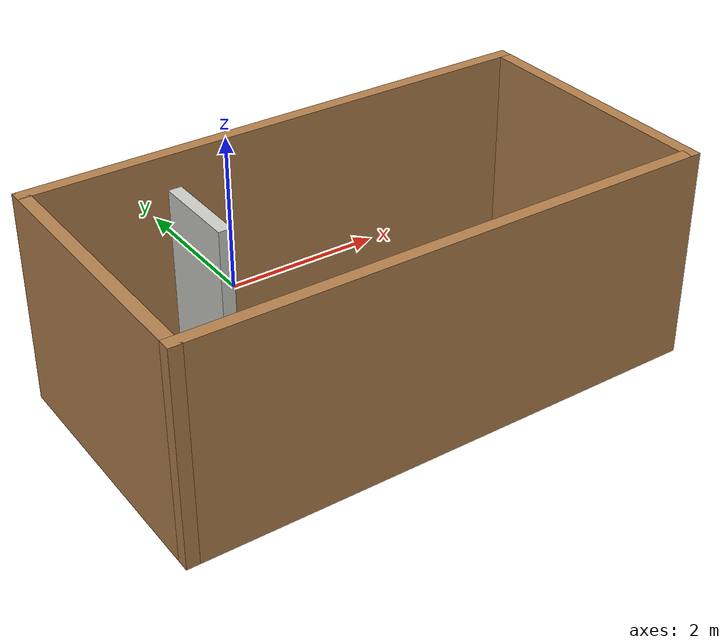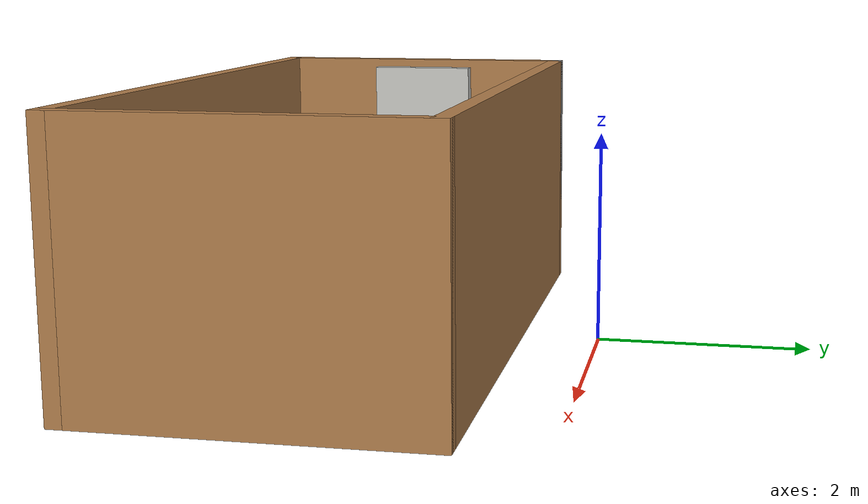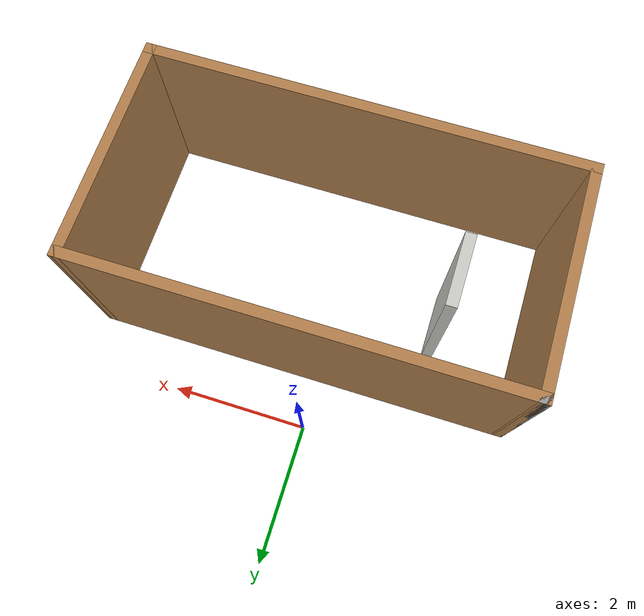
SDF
<?xml version='1.0'?>
<sdf version='1.6'>
  <model name='mapBot.world'>
    <pose frame=''>0.29 -2.36 0 0 -0 0</pose>
    <link name='Wall_0'>
      <collision name='Wall_0_Collision'>
        <geometry>
          <box>
            <size>3.25 0.15 2.5</size>
          </box>
        </geometry>
        <pose frame=''>0 0 1.25 0 -0 0</pose>
      </collision>
      <visual name='Wall_0_Visual'>
        <pose frame=''>0 0 1.25 0 -0 0</pose>
        <geometry>
          <box>
            <size>3.25 0.15 2.5</size>
          </box>
        </geometry>
        <material>
          <script>
            <uri>file://media/materials/scripts/gazebo.material</uri>
            <name>Gazebo/Wood</name>
          </script>
          <ambient>1 1 1 1</ambient>
        </material>
      </visual>
      <pose frame=''>-3.05 0 0 0 -0 1.5708</pose>
    </link>
    <link name='Wall_1'>
      <collision name='Wall_1_Collision'>
        <geometry>
          <box>
            <size>0.15 0.15 2.5</size>
          </box>
        </geometry>
        <pose frame=''>0 0 1.25 0 -0 0</pose>
      </collision>
      <visual name='Wall_1_Visual'>
        <pose frame=''>0 0 1.25 0 -0 0</pose>
        <geometry>
          <box>
            <size>0.15 0.15 2.5</size>
          </box>
        </geometry>
        <material>
          <script>
            <uri>file://media/materials/scripts/gazebo.material</uri>
            <name>Gazebo/Grey</name>
          </script>
          <ambient>1 1 1 1</ambient>
        </material>
      </visual>
      <pose frame=''>-3.05 1.55 0 0 -0 0</pose>
    </link>
    <link name='Wall_2'>
      <collision name='Wall_2_Collision'>
        <geometry>
          <box>
            <size>6.25 0.15 2.5</size>
          </box>
        </geometry>
        <pose frame=''>0 0 1.25 0 -0 0</pose>
      </collision>
      <visual name='Wall_2_Visual'>
        <pose frame=''>0 0 1.25 0 -0 0</pose>
        <geometry>
          <box>
            <size>6.25 0.15 2.5</size>
          </box>
        </geometry>
        <material>
          <script>
            <uri>file://media/materials/scripts/gazebo.material</uri>
            <name>Gazebo/Wood</name>
          </script>
          <ambient>1 1 1 1</ambient>
        </material>
      </visual>
      <pose frame=''>0 1.55 0 0 -0 0</pose>
    </link>
    <link name='Wall_3'>
      <collision name='Wall_3_Collision'>
        <geometry>
          <box>
            <size>3.25 0.15 2.5</size>
          </box>
        </geometry>
        <pose frame=''>0 0 1.25 0 -0 0</pose>
      </collision>
      <visual name='Wall_3_Visual'>
        <pose frame=''>0 0 1.25 0 -0 0</pose>
        <geometry>
          <box>
            <size>3.25 0.15 2.5</size>
          </box>
        </geometry>
        <material>
          <script>
            <uri>file://media/materials/scripts/gazebo.material</uri>
            <name>Gazebo/Wood</name>
          </script>
          <ambient>1 1 1 1</ambient>
        </material>
      </visual>
      <pose frame=''>3.05 0 0 0 0 -1.5708</pose>
    </link>
    <link name='Wall_4'>
      <collision name='Wall_4_Collision'>
        <geometry>
          <box>
            <size>6.25 0.15 2.5</size>
          </box>
        </geometry>
        <pose frame=''>0 0 1.25 0 -0 0</pose>
      </collision>
      <visual name='Wall_4_Visual'>
        <pose frame=''>0 0 1.25 0 -0 0</pose>
        <geometry>
          <box>
            <size>6.25 0.15 2.5</size>
          </box>
        </geometry>
        <material>
          <script>
            <uri>file://media/materials/scripts/gazebo.material</uri>
            <name>Gazebo/Wood</name>
          </script>
          <ambient>1 1 1 1</ambient>
        </material>
      </visual>
      <pose frame=''>0 -1.55 0 0 -0 3.14159</pose>
    </link>
    <link name='Wall_6'>
      <collision name='Wall_6_Collision'>
        <geometry>
          <box>
            <size>1 0.15 2.5</size>
          </box>
        </geometry>
        <pose frame=''>0 0 1.25 0 -0 0</pose>
      </collision>
      <visual name='Wall_6_Visual'>
        <pose frame=''>0 0 1.25 0 -0 0</pose>
        <geometry>
          <box>
            <size>1 0.15 2.5</size>
          </box>
        </geometry>
        <material>
          <script>
            <uri>file://media/materials/scripts/gazebo.material</uri>
            <name>Gazebo/CeilingTiled</name>
          </script>
          <ambient>1 1 1 1</ambient>
        </material>
      </visual>
      <pose frame=''>-1.74 0.305 0 0 -0 1.5708</pose>
    </link>
    <static>1</static>
  </model>
</sdf>
